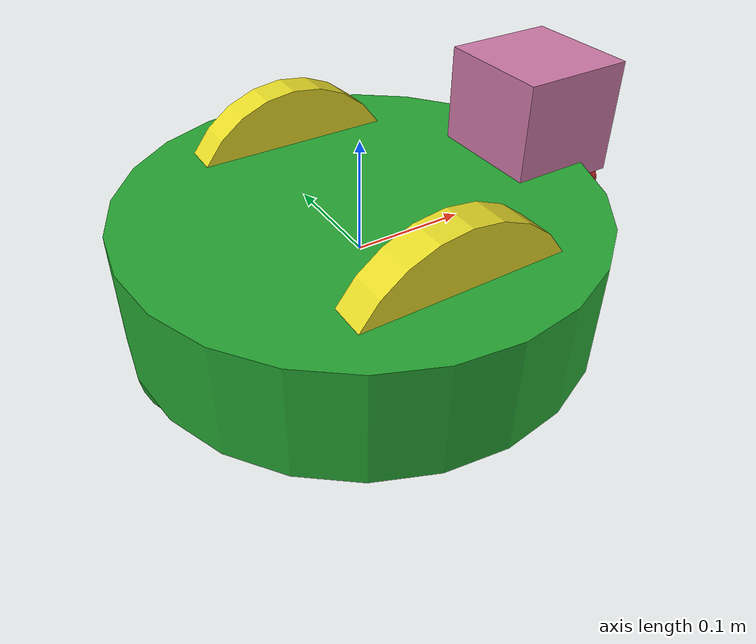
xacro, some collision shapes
<?xml version='1.0'?>

<robot name="my_robot" xmlns:xacro="http://www.ros.org/wiki/xacro">
<xacro:include filename="$(find my_robot)/urdf/my_robot.gazebo" />

  <link name="robot_footprint"></link>

  <joint name="robot_footprint_joint" type="fixed">
    <origin xyz="0 0 0" rpy="0 0 0" />
    <parent link="robot_footprint"/>
    <child link="chassis" />
  </joint>

  <link name='chassis'>
    <pose>0 0 0.1 0 0 0</pose>

    <inertial>
      <mass value="15.0"/>
      <origin xyz="0.0 0 0" rpy=" 0 0 0"/>
      <inertia
          ixx="0.1" ixy="0" ixz="0"
          iyy="0.1" iyz="0"
          izz="0.1"
      />
    </inertial>

    <collision name='collision'>
      <origin xyz="0 0 0" rpy=" 0 0 0"/>
      <geometry>
        <cylinder length="0.1" radius="0.2"/>
      </geometry>
    </collision>

    <visual name='chassis_visual'>
      <origin xyz="0 0 0" rpy=" 0 0 0"/>
      <geometry>
        <cylinder length="0.1" radius="0.2"/>
      </geometry>
    </visual>

    <collision name='back_caster_collision'>
      <origin xyz="-0.15 0 -0.05" rpy=" 0 0 0"/>
      <geometry>
        <sphere radius="0.0499"/>
      </geometry>
    </collision>

    <visual name='back_caster_visual'>
      <origin xyz="-0.15 0 -0.05" rpy=" 0 0 0"/>
      <geometry>
        <sphere radius="0.05"/>
      </geometry>
    </visual>

    <collision name='front_caster_collision'>
      <origin xyz="0.15 0 -0.05" rpy=" 0 0 0"/>
      <geometry>
        <sphere radius="0.0499"/>
      </geometry>
    </collision>

    <visual name='front_caster_visual'>
      <origin xyz="0.15 0 -0.05" rpy=" 0 0 0"/>
      <geometry>
        <sphere radius="0.05"/>
      </geometry>
    </visual>

  </link>

<!--Link (left_wheel)-->
  <link name='left_wheel'>
    <inertial>
      <mass value="5"/>
      <origin xyz="0 0 0" rpy="0 1.5707 1.5707" />
      <inertia
          ixx="0.1" ixy="0" ixz="0"
          iyy="0.1" iyz="0"
          izz="0.1"
      />
    </inertial>

    <collision name='left_wheel_collision'>
      <origin  xyz="0 0 0" rpy="0 1.5707 1.5707"/>
      <geometry>
        <cylinder length="0.03" radius="0.1"/>
      </geometry>
    </collision>

    <visual name='left_wheel_visual'>
      <origin xyz="0 0 0" rpy="0 1.5707 1.5707"/>
      <geometry>
        <cylinder length="0.03" radius="0.1"/>
      </geometry>
    </visual>

  </link>
<!--Link (right_wheel)-->
  <link name='right_wheel'>
    <inertial>
      <mass value="5"/>
      <origin xyz="0 0 0" rpy="0 1.5707 1.5707" />
      <inertia
          ixx="0.1" ixy="0" ixz="0"
          iyy="0.1" iyz="0"
          izz="0.1"
      />
    </inertial>

    <collision name='right_wheel_collision'>
      <origin  xyz="0 0 0" rpy="0 1.5707 1.5707"/>
      <geometry>
        <cylinder length="0.03" radius="0.1"/>
      </geometry>
    </collision>

    <visual name='right_wheel_visual'>
      <origin xyz="0 0 0" rpy="0 1.5707 1.5707"/>
      <geometry>
        <cylinder length="0.03" radius="0.1"/>
      </geometry>
    </visual>

  </link>

<!--Joint (left_wheel_hinge)-->
  <joint name="left_wheel_hinge" type="continuous">
    <origin xyz="0 0.125 0" rpy="0 0 0"/>
    <child link="left_wheel" />
    <parent link="chassis"/>
    <axis xyz="0 1 0" rpy="0 0 0" />
    <limit effort="10000" velocity="1000"/>
    <joint_properties damping="1.0" friction="1.0" />
  </joint>
<!--Joint (right_wheel_hinge)-->
  <joint name="right_wheel_hinge" type="continuous">
    <origin xyz="0 -0.125 0" rpy="0 0 0"/>
    <child link="right_wheel" />
    <parent link="chassis"/>
    <axis xyz="0 1 0" rpy="0 0 0" />
    <limit effort="10000" velocity="1000"/>
    <joint_properties damping="1.0" friction="1.0" />
  </joint>

<!--Link (camera)-->
  <link name='camera'>
    <inertial>
      <origin xyz="0 0 0" rpy="0 0 0"/>
      <mass value="0.1"/>
      <box_inertia m="0.1" x="0.05" y="0.05" z="0.05"/>
      <inertia
          ixx="1e-6" ixy="0" ixz="0"
          iyy="1e-6" iyz="0"
          izz="1e-6"
      />
    </inertial>

    <visual name='camera_visual'>
      <origin xyz="0 0 0" rpy="1.5707 0 1.5707"/>
      <geometry>
        <cylinder length="0.05" radius="0.025"/>
      </geometry>
    </visual>

    <collision name='camera_collision'>
      <origin xyz="0 0 0" rpy="1.5707 0 1.5707"/>
      <geometry>
        <cylinder length="0.05" radius="0.025"/>
      </geometry>
    </collision>
  </link>

  <!--Joint (camera)-->
  <joint type="fixed" name="camera_joint">
    <origin xyz="0.225 0 0" rpy="0 0 0"/>
    <child link="camera"/>
    <parent link="chassis"/>
    <axis xyz="0 1 0"/>
  </joint>

  <joint name="camera_optical_joint" type="fixed">
    <origin xyz="0 0 0" rpy="-1.5707 0 -1.5707"/>
    <parent link="camera"/>
    <child link="camera_link_optical"/>
  </joint>

  <link name="camera_link_optical">
  </link>

<!--Links (hokuyo)-->
  <link name='hokuyo'>
    <inertial>
      <origin xyz="0 0 0" rpy="0 0 0"/>
      <mass value="1e-5"/>
      <inertia
          ixx="1e-6" ixy="0" ixz="0"
          iyy="1e-6" iyz="0"
          izz="1e-6"
      />
    </inertial>

    <visual name='hokuyo_visual'>
      <origin xyz="0 0 0" rpy="0 0 0"/>
      <geometry>
        <mesh filename="package://my_robot/meshes/hokuyo.dae"/>
      </geometry>
    </visual>

    <collision name='hokuyo_collision'>
      <origin xyz="0 0 0" rpy="0 0 0"/>
      <geometry>
        <box size=".1 .1 .1"/>
      </geometry>
    </collision>
  </link>

  <!--Joint (hokuyo)-->
  <joint type="fixed" name="hokuyo_joint">
    <origin xyz="0.175 0 .085" rpy="0 0 0"/>
    <child link="hokuyo"/>
    <parent link="chassis"/>
    <axis xyz="0 1 0"/>
  </joint>

<gazebo reference="left_wheel">
    <material>Gazebo/Yellow</material>
</gazebo>

<gazebo reference="right_wheel">
    <material>Gazebo/Yellow</material>
</gazebo>

<gazebo reference="camera">
    <material>Gazebo/Red</material>
</gazebo>

<gazebo reference="chassis">
    <material>Gazebo/Green</material>
</gazebo>

</robot>
